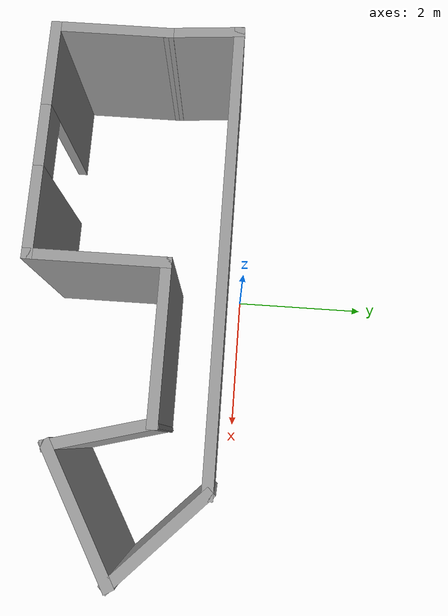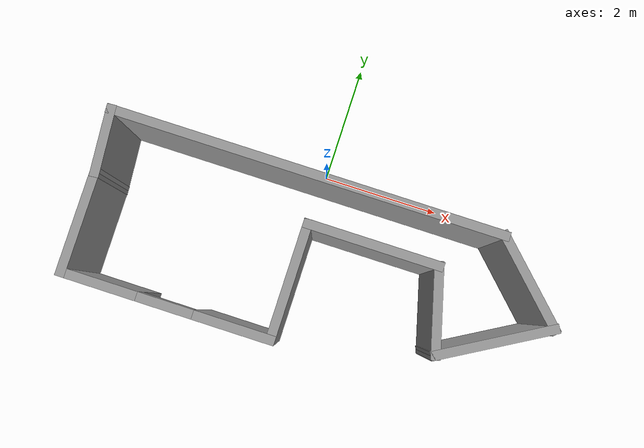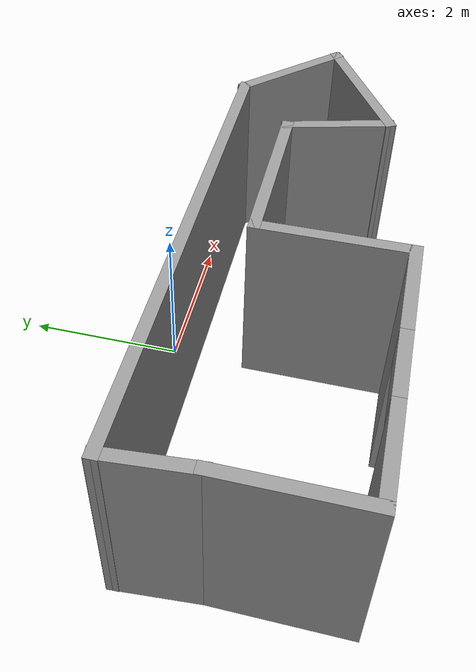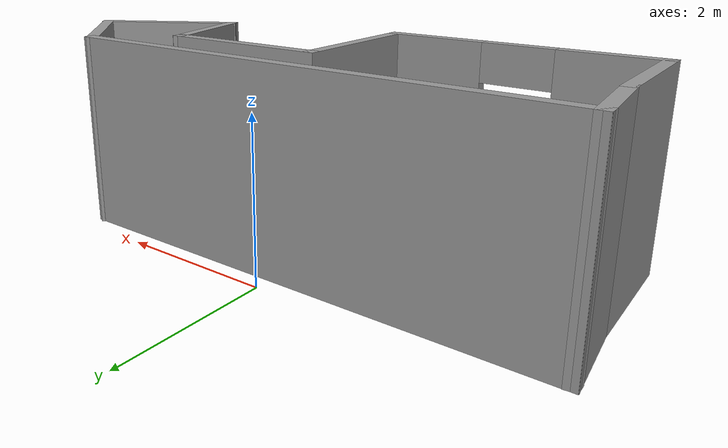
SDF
<?xml version='1.0'?>
<sdf version='1.6'>
  <model name='test1'>
    <pose frame=''>0.343542 -1.56328 0 0 -0 0</pose>
    <link name='Wall_0'>
      <collision name='Wall_0_Collision'>
        <geometry>
          <box>
            <size>1.75 0.15 2.5</size>
          </box>
        </geometry>
        <pose frame=''>0 0 1.25 0 -0 0</pose>
      </collision>
      <visual name='Wall_0_Visual'>
        <pose frame=''>0 0 1.25 0 -0 0</pose>
        <geometry>
          <box>
            <size>1.75 0.15 2.5</size>
          </box>
        </geometry>
        <material>
          <script>
            <uri>file://media/materials/scripts/gazebo.material</uri>
            <name>Gazebo/Grey</name>
          </script>
          <ambient>1 1 1 1</ambient>
        </material>
        <meta>
          <layer>0</layer>
        </meta>
      </visual>
      <pose frame=''>-3.67354 -0.516718 0 0 0 -1.5708</pose>
    </link>
    <link name='Wall_1'>
      <pose frame=''>-1.99854 -1.31672 0 0 -0 0</pose>
      <visual name='Wall_1_Visual_0'>
        <pose frame=''>-1.1075 0 1.25 0 -0 0</pose>
        <geometry>
          <box>
            <size>1.285 0.15 2.5</size>
          </box>
        </geometry>
        <material>
          <script>
            <uri>file://media/materials/scripts/gazebo.material</uri>
            <name>Gazebo/Grey</name>
          </script>
          <ambient>1 1 1 1</ambient>
        </material>
        <meta>
          <layer>0</layer>
        </meta>
      </visual>
      <collision name='Wall_1_Collision_0'>
        <geometry>
          <box>
            <size>1.285 0.15 2.5</size>
          </box>
        </geometry>
        <pose frame=''>-1.1075 0 1.25 0 -0 0</pose>
      </collision>
      <visual name='Wall_1_Visual_1'>
        <pose frame=''>1.0925 0 1.25 0 -0 0</pose>
        <geometry>
          <box>
            <size>1.315 0.15 2.5</size>
          </box>
        </geometry>
        <material>
          <script>
            <uri>file://media/materials/scripts/gazebo.material</uri>
            <name>Gazebo/Grey</name>
          </script>
          <ambient>1 1 1 1</ambient>
        </material>
        <meta>
          <layer>0</layer>
        </meta>
      </visual>
      <collision name='Wall_1_Collision_1'>
        <geometry>
          <box>
            <size>1.315 0.15 2.5</size>
          </box>
        </geometry>
        <pose frame=''>1.0925 0 1.25 0 -0 0</pose>
      </collision>
      <visual name='Wall_1_Visual_2'>
        <pose frame=''>-0.015 0 2.25 0 -0 0</pose>
        <geometry>
          <box>
            <size>0.9 0.15 0.5</size>
          </box>
        </geometry>
        <material>
          <script>
            <uri>file://media/materials/scripts/gazebo.material</uri>
            <name>Gazebo/Grey</name>
          </script>
          <ambient>1 1 1 1</ambient>
        </material>
        <meta>
          <layer>0</layer>
        </meta>
      </visual>
      <collision name='Wall_1_Collision_2'>
        <geometry>
          <box>
            <size>0.9 0.15 0.5</size>
          </box>
        </geometry>
        <pose frame=''>-0.015 0 2.25 0 -0 0</pose>
      </collision>
    </link>
    <link name='Wall_2'>
      <collision name='Wall_2_Collision'>
        <geometry>
          <box>
            <size>2 0.15 2.5</size>
          </box>
        </geometry>
        <pose frame=''>0 0 1.25 0 -0 0</pose>
      </collision>
      <visual name='Wall_2_Visual'>
        <pose frame=''>0 0 1.25 0 -0 0</pose>
        <geometry>
          <box>
            <size>2 0.15 2.5</size>
          </box>
        </geometry>
        <material>
          <script>
            <uri>file://media/materials/scripts/gazebo.material</uri>
            <name>Gazebo/Grey</name>
          </script>
          <ambient>1 1 1 1</ambient>
        </material>
        <meta>
          <layer>0</layer>
        </meta>
      </visual>
      <pose frame=''>-0.323542 -0.391719 0 0 -0 1.5708</pose>
    </link>
    <link name='Wall_3'>
      <collision name='Wall_3_Collision'>
        <geometry>
          <box>
            <size>2.25 0.15 2.5</size>
          </box>
        </geometry>
        <pose frame=''>0 0 1.25 0 -0 0</pose>
      </collision>
      <visual name='Wall_3_Visual'>
        <pose frame=''>0 0 1.25 0 -0 0</pose>
        <geometry>
          <box>
            <size>2.25 0.15 2.5</size>
          </box>
        </geometry>
        <material>
          <script>
            <uri>file://media/materials/scripts/gazebo.material</uri>
            <name>Gazebo/Grey</name>
          </script>
          <ambient>1 1 1 1</ambient>
        </material>
        <meta>
          <layer>0</layer>
        </meta>
      </visual>
      <pose frame=''>0.726458 0.533282 0 0 -0 0</pose>
    </link>
    <link name='Wall_4'>
      <collision name='Wall_4_Collision'>
        <geometry>
          <box>
            <size>1.5 0.15 2.5</size>
          </box>
        </geometry>
        <pose frame=''>0 0 1.25 0 -0 0</pose>
      </collision>
      <visual name='Wall_4_Visual'>
        <pose frame=''>0 0 1.25 0 -0 0</pose>
        <geometry>
          <box>
            <size>1.5 0.15 2.5</size>
          </box>
        </geometry>
        <material>
          <script>
            <uri>file://media/materials/scripts/gazebo.material</uri>
            <name>Gazebo/Grey</name>
          </script>
          <ambient>1 1 1 1</ambient>
        </material>
        <meta>
          <layer>0</layer>
        </meta>
      </visual>
      <pose frame=''>1.95116 -0.118718 0 0 0 -1.309</pose>
    </link>
    <link name='Wall_5'>
      <collision name='Wall_5_Collision'>
        <geometry>
          <box>
            <size>2 0.15 2.5</size>
          </box>
        </geometry>
        <pose frame=''>0 0 1.25 0 -0 0</pose>
      </collision>
      <visual name='Wall_5_Visual'>
        <pose frame=''>0 0 1.25 0 -0 0</pose>
        <geometry>
          <box>
            <size>2 0.15 2.5</size>
          </box>
        </geometry>
        <material>
          <script>
            <uri>file://media/materials/scripts/gazebo.material</uri>
            <name>Gazebo/Grey</name>
          </script>
          <ambient>1 1 1 1</ambient>
        </material>
        <meta>
          <layer>0</layer>
        </meta>
      </visual>
      <pose frame=''>2.92694 -0.308218 0 0 -0 0.523599</pose>
    </link>
    <link name='Wall_6'>
      <collision name='Wall_6_Collision'>
        <geometry>
          <box>
            <size>1.75 0.15 2.5</size>
          </box>
        </geometry>
        <pose frame=''>0 0 1.25 0 -0 0</pose>
      </collision>
      <visual name='Wall_6_Visual'>
        <pose frame=''>0 0 1.25 0 -0 0</pose>
        <geometry>
          <box>
            <size>1.75 0.15 2.5</size>
          </box>
        </geometry>
        <material>
          <script>
            <uri>file://media/materials/scripts/gazebo.material</uri>
            <name>Gazebo/Grey</name>
          </script>
          <ambient>1 1 1 1</ambient>
        </material>
        <meta>
          <layer>0</layer>
        </meta>
      </visual>
      <pose frame=''>3.16233 0.719967 0 0 -0 2.35619</pose>
    </link>
    <link name='Wall_7'>
      <collision name='Wall_7_Collision'>
        <geometry>
          <box>
            <size>6.5 0.15 2.5</size>
          </box>
        </geometry>
        <pose frame=''>0 0 1.25 0 -0 0</pose>
      </collision>
      <visual name='Wall_7_Visual'>
        <pose frame=''>0 0 1.25 0 -0 0</pose>
        <geometry>
          <box>
            <size>6.5 0.15 2.5</size>
          </box>
        </geometry>
        <material>
          <script>
            <uri>file://media/materials/scripts/gazebo.material</uri>
            <name>Gazebo/Grey</name>
          </script>
          <ambient>1 1 1 1</ambient>
        </material>
        <meta>
          <layer>0</layer>
        </meta>
      </visual>
      <pose frame=''>-0.57836 1.28565 0 0 -0 3.14159</pose>
    </link>
    <link name='Wall_8'>
      <collision name='Wall_8_Collision'>
        <geometry>
          <box>
            <size>1.15554 0.15 2.5</size>
          </box>
        </geometry>
        <pose frame=''>0 0 1.25 0 -0 0</pose>
      </collision>
      <visual name='Wall_8_Visual'>
        <pose frame=''>0 0 1.25 0 -0 0</pose>
        <geometry>
          <box>
            <size>1.15554 0.15 2.5</size>
          </box>
        </geometry>
        <material>
          <script>
            <uri>file://media/materials/scripts/gazebo.material</uri>
            <name>Gazebo/Grey</name>
          </script>
          <ambient>1 1 1 1</ambient>
        </material>
        <meta>
          <layer>0</layer>
        </meta>
      </visual>
      <pose frame=''>-3.71345 0.784467 0 0 0 -1.49134</pose>
    </link>
    <static>1</static>
  </model>
</sdf>
